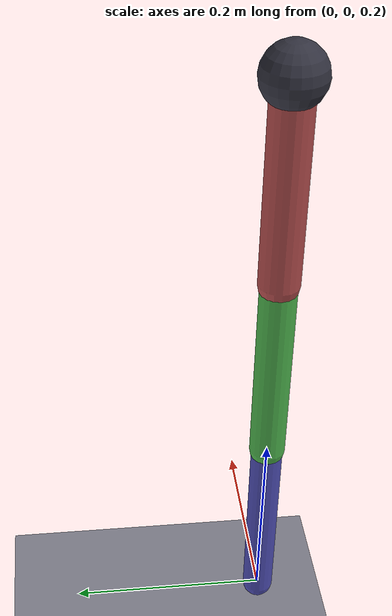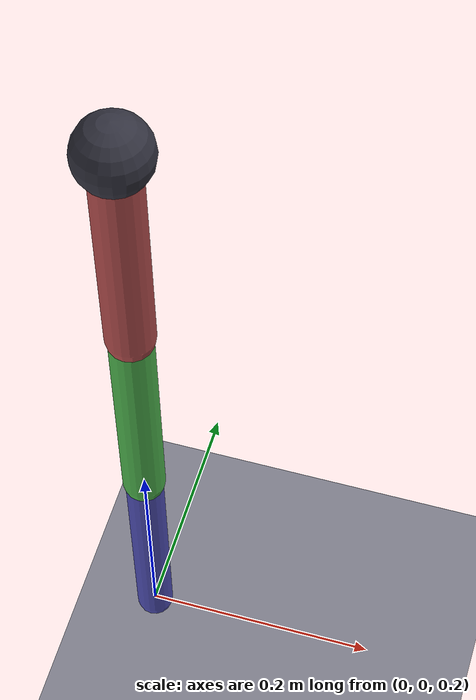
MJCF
<mujoco model="arm">
  <option timestep="0.002" integrator="Euler" solver="Newton" tolerance="0" iterations="30"/>

  <worldbody>
    <light pos="0 0 2" dir="0 0 -1" diffuse="0.9 0.9 0.9"/>
    <geom name="floor" type="plane" size="1 1 0.02" rgba="0.5 0.5 0.55 1"/>

    <body name="base" pos="0 0 0.8">
      <geom name="base_geom" type="sphere" size="0.03" rgba="0.2 0.2 0.25 1"/>
      <body name="link_1" pos="0 0 0">
        <joint name="j1" type="hinge" axis="0 1 0" damping="0.05"/>
        <geom name="link_1_geom" type="capsule" fromto="0 0 0 0 0 -0.2" size="0.02"
              mass="0.4" rgba="0.7 0.3 0.3 1"/>
        <body name="link_2" pos="0 0 -0.2">
          <joint name="j2" type="hinge" axis="0 1 0" damping="0.05"/>
          <geom name="link_2_geom" type="capsule" fromto="0 0 0 0 0 -0.2" size="0.018"
                mass="0.3" rgba="0.3 0.7 0.3 1"/>
          <body name="link_3" pos="0 0 -0.2">
            <joint name="j3" type="hinge" axis="0 1 0" damping="0.05"/>
            <geom name="link_3_geom" type="capsule" fromto="0 0 0 0 0 -0.2" size="0.016"
                  mass="0.2" rgba="0.3 0.3 0.7 1"/>
          </body>
        </body>
      </body>
    </body>
  </worldbody>

  <sensor>
    <framepos name="link_1.pos" objtype="body" objname="link_1"/>
    <framelinvel name="link_1.vel" objtype="body" objname="link_1"/>
    <framepos name="link_2.pos" objtype="body" objname="link_2"/>
    <framelinvel name="link_2.vel" objtype="body" objname="link_2"/>
    <framepos name="link_3.pos" objtype="body" objname="link_3"/>
    <framelinvel name="link_3.vel" objtype="body" objname="link_3"/>
  </sensor>
</mujoco>
